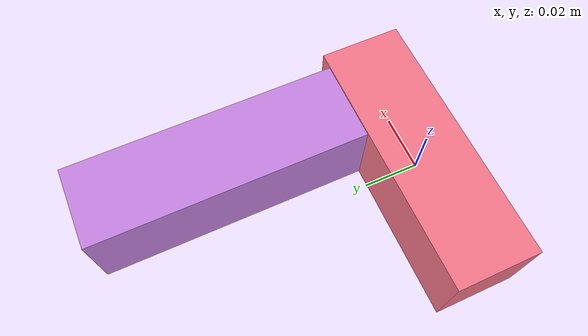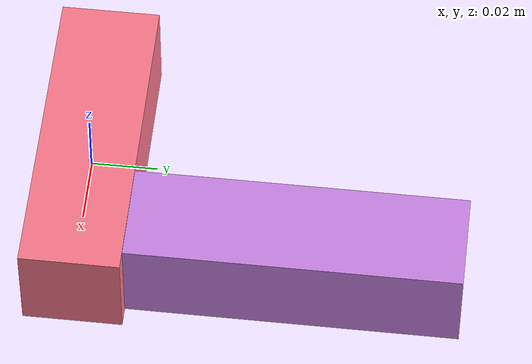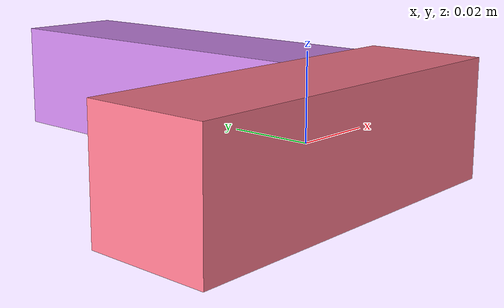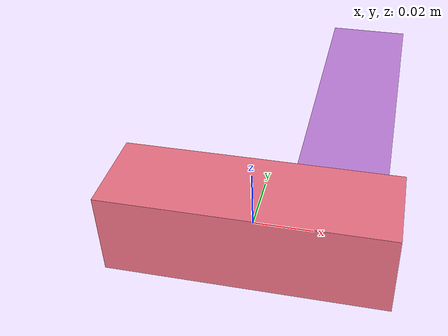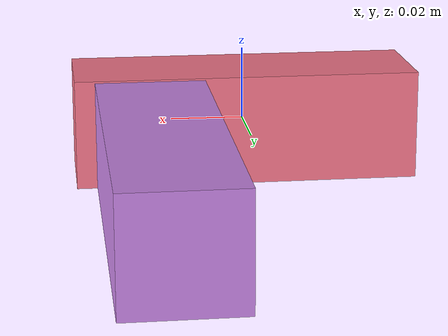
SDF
<sdf version="1.4"><world name="default"><model name="object0"><link name="link1"><pose>0 0 0 0 0 0</pose><inertial><pose>0 0 0 0 0 0</pose><mass>0.05116568434292684</mass><inertia><ixx>7.674852651439025e-06</ixx><ixy>0</ixy><iyy>4.211704438848732e-05</iyy><ixz>0</ixz><iyz>0</iyz><izz>4.211704438848732e-05</izz></inertia></inertial><visual name="link1_visual"><pose>0 0  0 0 0 0</pose><geometry><box><size>0.09475126730171637 0.03 0.03</size></box></geometry><material><diffuse>0.9864924757140368 0.4758349194430003 0.5573851685438036 1</diffuse></material></visual><collision><pose>0 0  0 0 0 0</pose><geometry><box><size>0.09475126730171637 0.03 0.03</size></box></geometry></collision></link><link name="link2"><pose>0.0268564283564231 0.05759918566196234 0 0 0 0</pose><inertial><pose>0 0 0 0 0 0</pose><mass>0.062017455321345887</mass><inertia><ixx>7.251321425162778e-05</ixx><ixy>0</ixy><iyy>8.997699142871931e-06</iyy><ixz>0</ixz><iyz>0</iyz><izz>7.281813340695773e-05</izz></inertia></inertial><visual name="link2_visual"><pose>0 0  0 0 0 0</pose><geometry><box><size>0.03 0.11484713948397388 0.028999999999999998</size></box></geometry><material><diffuse>0.7964950753513035 0.5270035417904513 0.9101971700555531 1</diffuse></material></visual><collision><pose>0 0  0 0 0 0</pose><geometry><box><size>0.03 0.11484713948397388 0.028999999999999998</size></box></geometry></collision></link><joint name="link_joint_0" type="fixed"><parent>link1</parent><child>link2</child><pose>0 0 0 0 0 0</pose><axis><xyz>0 0 1</xyz></axis></joint></model></world></sdf>
